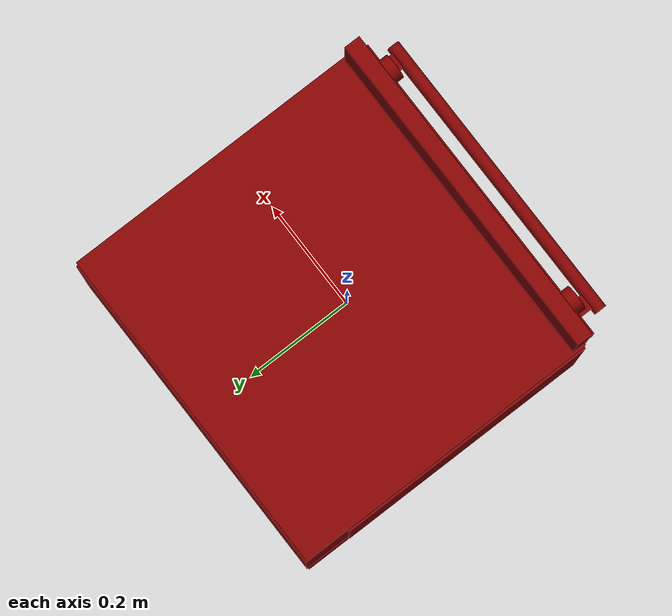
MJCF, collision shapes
<mujoco model="model">
  <compiler angle="radian"/>
  <asset>
    <mesh file="visuals/Body001.obj" name="Body001_vis"/>
    <mesh file="visuals/Door001.obj" name="Door001_vis"/>
    <mesh file="visuals/Door001_Clear.obj" name="Door001_Clear_vis"/>
    <mesh file="visuals/Konb001.obj" name="Konb001_vis"/>
    <mesh file="visuals/Konb002.obj" name="Konb002_vis"/>
    <mesh file="visuals/Shelf001.obj" name="Shelf001_vis"/>
    <texture file="visuals/T_BC001.png" name="Body001_material" type="2d"/>
    <material name="Body001_material" rgba="1 1 1 1.0" texture="Body001_material" shininess="0.4472135901451111" specular="2"/>
    <texture file="visuals/T_BC001.png" name="Door001_material" type="2d"/>
    <material name="Door001_material" rgba="1 1 1 1.0" texture="Door001_material" shininess="0.4472135901451111" specular="2"/>
    <texture file="visuals/T_BC001.png" name="Door001_Clear_material" type="2d"/>
    <material name="Door001_Clear_material" rgba="1 1 1 0.7935505509376526" texture="Door001_Clear_material" shininess="0.4472135901451111" specular="0.3103448502657381"/>
    <texture file="visuals/T_BC001.png" name="Konb001_material" type="2d"/>
    <material name="Konb001_material" rgba="1 1 1 1.0" texture="Konb001_material" shininess="0.4472135901451111" specular="0.3103448502657381"/>
    <texture file="visuals/T_BC001.png" name="Konb002_material" type="2d"/>
    <material name="Konb002_material" rgba="1 1 1 1.0" texture="Konb002_material" shininess="0.4472135901451111" specular="0.3103448502657381"/>
    <texture file="visuals/T_BC001.png" name="Shelf001_material" type="2d"/>
    <material name="Shelf001_material" rgba="1 1 1 1.0" texture="Shelf001_material" shininess="0.4472135901451111" specular="5"/>
  </asset>
  <default>
    <default class="visual">
      <geom conaffinity="0" contype="0" group="1" type="mesh"/>
    </default>
    <default class="collision">
      <geom group="0" rgba="0.5 0 0 0.5"/>
    </default>
    <default class="spawn">
      <geom group="0" rgba="1 1 1 0.5" contype="0" conaffinity="0"/>
      <site group="0" rgba="1 1 1 0.5"/>
    </default>
    <default class="region">
      <geom group="1" conaffinity="0" contype="0" rgba="0 1 0 0"/>
    </default>
  </default>
  <worldbody>
    <body>
      <body name="object">
        <geom mesh="Body001_vis" type="mesh" solimp="0.998 0.998 0.001" solref="0.001 1" density="100" friction="0.95 0.3 0.1" class="visual" material="Body001_material"/>
        <geom class="collision" type="box" pos="0.001722 0.031934 -0.235982" size="0.30189499258995056 0.2819826602935791 0.06140553578734398" quat="1.0 0.0 0.0 0.0"/>
        <geom class="collision" type="box" pos="0.001722 0.031934 0.152275" size="0.30189406871795654 0.2819826602935791 0.022927280515432358" quat="1.0 0.0 0.0 0.0"/>
        <geom class="collision" type="box" pos="0.001722 0.271399 -0.026763" size="0.3018941283226013 0.04584115743637085 0.16321706771850586" quat="1.0 0.0 0.0 0.0"/>
        <geom class="collision" type="box" pos="0.001722 -0.241260 0.235953" size="0.2978925108909607 0.014538350515067577 0.06143416091799736" quat="1.0 0.0 0.0 0.0"/>
        <geom class="collision" type="box" pos="-0.263534 -0.010279 -0.026763" size="0.04008325934410095 0.23991259932518005 0.16321706771850586" quat="1.0 0.0 0.0 0.0"/>
        <geom class="collision" type="box" pos="0.264196 -0.010279 -0.026763" size="0.037315890192985535 0.23991259932518005 0.16321706771850586" quat="1.0 0.0 0.0 0.0"/>
        <geom class="collision" type="box" pos="0.207735 0.101329 -0.084957" size="0.005245341453701258 0.1396121233701706 0.0022579608485102654" quat="1.0 0.0 0.0 0.0"/>
        <geom class="collision" type="box" pos="-0.204256 0.101329 -0.084957" size="0.005245341453701258 0.1396121233701706 0.0022579608485102654" quat="1.0 0.0 0.0 0.0"/>
        <geom class="collision" type="box" pos="-0.248775 0.015984 -0.030460" size="0.04008327051997185 0.18684591352939606 0.08682269603013992" quat="1.0 0.0 0.0 0.0"/>
        <geom class="collision" type="box" pos="0.251013 0.015681 -0.030460" size="0.04008325934410095 0.18654336035251617 0.08682266622781754" quat="1.0 0.0 0.0 0.0"/>
        <body name="Door001">
          <joint axis="1.0 0.0 0.0" pos="0.001722 -0.254132 -0.273926" limited="true" name="Door001_joint" range="0.0 1.15" type="hinge" damping="5" frictionloss="1" armature=".01" stiffness="0.05" springref="-0.1"/>
          <geom mesh="Door001_vis" type="mesh" solimp="0.998 0.998 0.001" solref="0.001 1" density="100" friction="0.95 0.3 0.1" class="visual" material="Door001_material"/>
          <geom class="collision" type="box" pos="-0.252438 -0.262405 -0.052311" size="0.04099590703845024 0.005402619484812021 0.21845398843288422" quat="1.0 0.0 0.0 0.0"/>
          <geom class="collision" type="box" pos="-0.245610 -0.283159 0.148296" size="0.01411193422973156 0.015450629405677319 0.0075039551593363285" quat="1.0 0.0 0.0 0.0"/>
          <geom class="collision" type="box" pos="0.248929 -0.283159 0.148296" size="0.014111936092376709 0.015450629405677319 0.00750395655632019" quat="1.0 0.0 0.0 0.0"/>
          <geom class="collision" type="cylinder" pos="0.001722 -0.305610 0.148985" size="0.01154937595129013 0.27145805954933167" quat="0.7071068286895752 -4.750302551315144e-08 0.7071067094802856 4.7503014855010406e-08"/>
          <geom class="collision" type="box" pos="0.255151 -0.262405 -0.052311" size="0.04099583998322487 0.005402612965553999 0.21845360100269318" quat="1.0 0.0 0.0 0.0"/>
          <geom class="collision" type="box" pos="0.001730 -0.264764 0.141054" size="0.29567983746528625 0.0077619063667953014 0.02724754624068737" quat="1.0 0.0 0.0 0.0"/>
          <geom class="collision" type="box" pos="0.001730 -0.264764 -0.225377" size="0.2956797182559967 0.007761903572827578 0.04831298813223839" quat="1.0 0.0 0.0 0.0"/>
          <body name="Door001_Clear">
            <geom mesh="Door001_Clear_vis" type="mesh" solimp="0.998 0.998 0.001" solref="0.001 1" density="100" friction="0.95 0.3 0.1" class="visual" material="Door001_Clear_material"/>
            <geom class="collision" type="box" pos="0.001730 -0.259399 -0.031020" size="0.20982052385807037 0.0019100116332992911 0.14317499101161957" quat="1.0 0.0 0.0 0.0"/>
          </body>
        </body>
        <body name="Konb001">
          <joint axis="0.0 1.0 0.0" pos="-0.233576 -0.260544 0.236005" limited="true" name="Konb001_joint" range="0.0 5.585053606381854" type="hinge" damping="1" frictionloss="1" armature=".01" stiffness="0.05"/>
          <geom mesh="Konb001_vis" type="mesh" solimp="0.998 0.998 0.001" solref="0.001 1" density="100" friction="0.95 0.3 0.1" class="visual" material="Konb001_material"/>
          <geom class="collision" type="cylinder" pos="-0.233562 -0.267847 0.235970" size="0.02280486561357975 0.010639902204275131" quat="0.7071068286895752 0.7071067690849304 -1.5700924318127872e-16 -5.9269340452702814e-24"/>
        </body>
        <body name="Konb002">
          <joint axis="0.0 -1.0 0.0" pos="0.234628 -0.260544 0.234455" limited="true" name="Konb002_joint" range="-1.0471975511965976 3.141592653589793" type="hinge" damping="1" frictionloss="1" armature=".01" stiffness="0.05"/>
          <geom mesh="Konb002_vis" type="mesh" solimp="0.998 0.998 0.001" solref="0.001 1" density="100" friction="0.95 0.3 0.1" class="visual" material="Konb002_material"/>
          <geom class="collision" type="cylinder" pos="0.234757 -0.267488 0.234572" size="0.02280486561357975 0.010685468092560768" quat="0.7071068286895752 0.7071067690849304 -1.5700924318127872e-16 -5.9269340452702814e-24"/>
        </body>
        <body name="Shelf001">
          <joint axis="0.0 -1.0 0.0" pos="0.001705 0.012516 -0.088068" limited="true" name="Shelf001_joint" range="0.0 0.25" type="slide" damping="1" frictionloss="1" armature=".01" stiffness="0.05"/>
          <geom mesh="Shelf001_vis" type="mesh" solimp="0.998 0.998 0.001" solref="0.001 1" density="100" friction="0.95 0.3 0.1" class="visual" material="Shelf001_material"/>
          <geom class="collision" type="box" pos="0.001705 0.012516 -0.088068" size="0.19845271110534668 0.15749013423919678 0.011858089827001095" quat="1.0 0.0 0.0 0.0"/>
        </body>
        <geom class="region" name="reg_main" type="box" pos="0.0017220000000000013 0.027224500000000013 -0.0002535000000000176" size="0.297893 0.28323750000000003 0.2971335"/>
        <geom class="region" name="reg_int" type="box" pos="0.0006514999999999993 0.0162225 -0.03134799999999999" size="0.2243915 0.2639905 0.160441"/>
      </body>
    </body>
  </worldbody>
  <actuator>
    <motor name="Door001_joint_actuator" joint="Door001_joint" gear="50"/>
    <motor name="Konb001_joint_actuator" joint="Konb001_joint" gear="50"/>
    <motor name="Konb002_joint_actuator" joint="Konb002_joint" gear="50"/>
    <motor name="Shelf001_joint_actuator" joint="Shelf001_joint" gear="50"/>
  </actuator>
</mujoco>
